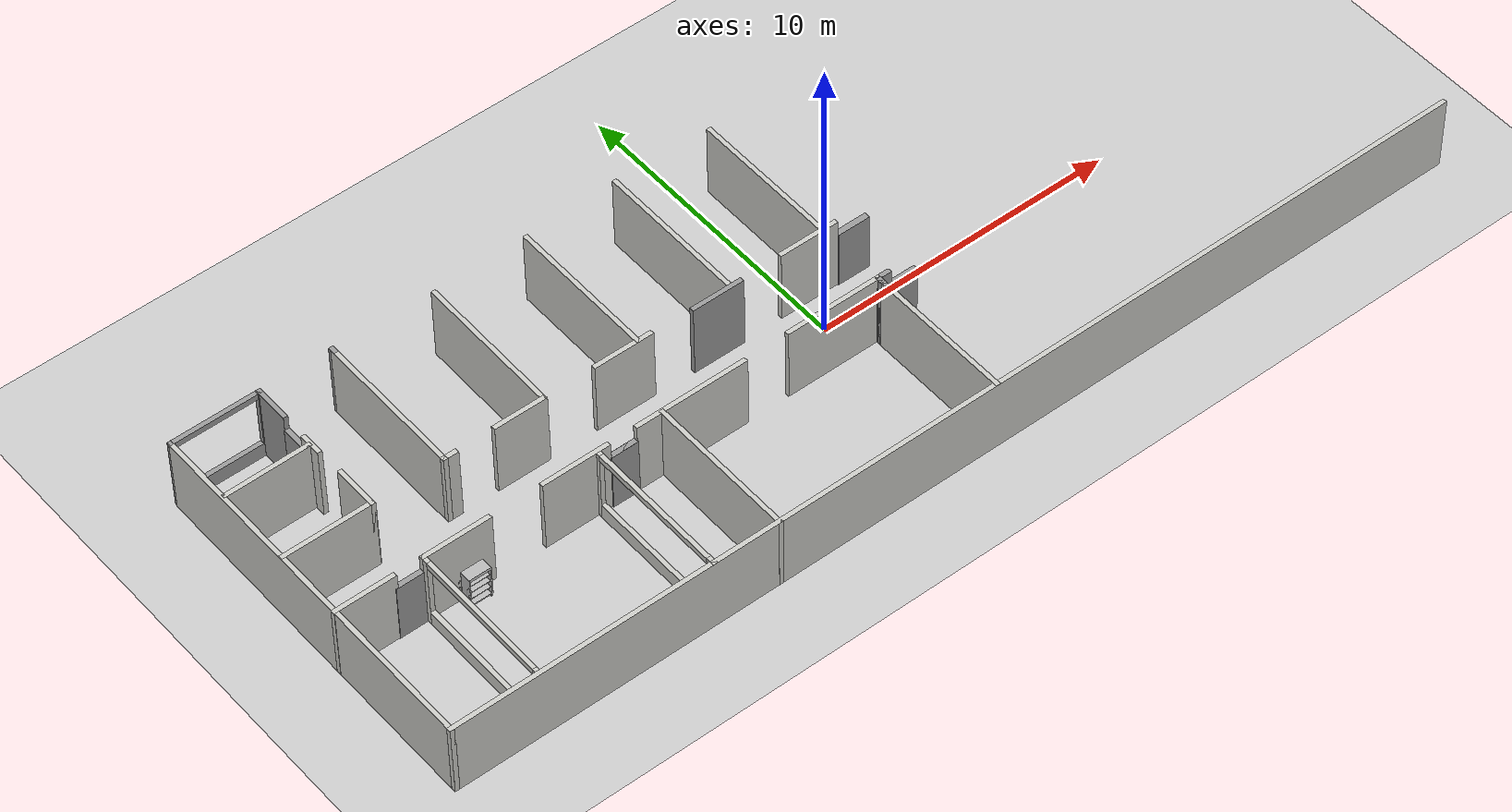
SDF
<sdf version="1.7">
 <world name="default">
  <model name="ground_plane">
   <static>1</static>
   <link name="link">
    <collision name="collision">
     <geometry><plane><normal>0 0 1</normal><size>100 100</size></plane></geometry>
     <surface>
      <contact><collide_bitmask>65535</collide_bitmask></contact>
      <friction><ode><mu>100</mu><mu2>50</mu2></ode></friction>
     </surface>
    </collision>
    <visual name="visual">
     <cast_shadows>0</cast_shadows>
     <geometry><plane><normal>0 0 1</normal><size>100 100</size></plane></geometry>
     <material>
      <script><uri>file://media/materials/scripts/gazebo.material</uri><name>Gazebo/Grey</name></script>
     </material>
    </visual>
   </link>
  </model>
  <model name="Loyola">
   <pose>0.01158 0.01152 0 0 -0 0</pose>
   <link name="Door_0">
    <collision name="Door_0_Collision">
     <geometry><box><size>0.9 0.17 2</size></box></geometry>
     <pose>0 0 1 0 -0 0</pose>
    </collision>
    <visual name="Door_0_Visual">
     <pose>0 0 1 0 -0 0</pose>
     <geometry><box><size>0.9 0.17 2</size></box></geometry>
     <material>
      <script><uri>file://media/materials/scripts/gazebo.material</uri><name>Gazebo/Grey</name></script>
     </material>
    </visual>
    <pose>-7.88567 -1.23425 0 0 -0 0</pose>
   </link>
   <link name="Door_11">
    <collision name="Door_11_Collision">
     <geometry><box><size>0.9 0.17 2</size></box></geometry>
     <pose>0 0 1 0 -0 0</pose>
    </collision>
    <visual name="Door_11_Visual">
     <pose>0 0 1 0 -0 0</pose>
     <geometry><box><size>0.9 0.17 2</size></box></geometry>
     <material>
      <script><uri>file://media/materials/scripts/gazebo.material</uri><name>Gazebo/Grey</name></script>
     </material>
    </visual>
    <pose>1.76233 -1.19882 0 0 -0 0</pose>
   </link>
   <link name="Door_14">
    <collision name="Door_14_Collision">
     <geometry><box><size>1.09762 0.2 2</size></box></geometry>
     <pose>0 0 1 0 -0 0</pose>
    </collision>
    <visual name="Door_14_Visual">
     <pose>0 0 1 0 -0 0</pose>
     <geometry><box><size>1.09762 0.2 2</size></box></geometry>
     <material>
      <script><uri>file://media/materials/scripts/gazebo.material</uri><name>Gazebo/Grey</name></script>
     </material>
    </visual>
    <pose>1.89125 1.11694 0 0 -0 0</pose>
   </link>
   <link name="Door_4">
    <collision name="Door_4_Collision">
     <geometry><box><size>0.9 0.17 2</size></box></geometry>
     <pose>0 0 1 0 -0 0</pose>
    </collision>
    <visual name="Door_4_Visual">
     <pose>0 0 1 0 -0 0</pose>
     <geometry><box><size>0.9 0.17 2</size></box></geometry>
     <material>
      <script><uri>file://media/materials/scripts/gazebo.material</uri><name>Gazebo/Grey</name></script>
     </material>
    </visual>
    <pose>-14.3181 4.49137 0 0 -0 1.56919</pose>
   </link>
   <link name="Door_7">
    <collision name="Door_7_Collision">
     <geometry><box><size>0.9 0.17 2</size></box></geometry>
     <pose>0 0 1 0 -0 0</pose>
    </collision>
    <visual name="Door_7_Visual">
     <pose>0 0 1 0 -0 0</pose>
     <geometry><box><size>0.9 0.17 2</size></box></geometry>
     <material>
      <script><uri>file://media/materials/scripts/gazebo.material</uri><name>Gazebo/Grey</name></script>
     </material>
    </visual>
    <pose>-14.895 -1.20399 0 0 -0 0</pose>
   </link>
   <link name="Door_8">
    <collision name="Door_8_Collision">
     <geometry><box><size>0.9 0.17 2</size></box></geometry>
     <pose>0 0 1 0 -0 0</pose>
    </collision>
    <visual name="Door_8_Visual">
     <pose>0 0 1 0 -0 0</pose>
     <geometry><box><size>0.9 0.17 2</size></box></geometry>
     <material>
      <script><uri>file://media/materials/scripts/gazebo.material</uri><name>Gazebo/Grey</name></script>
     </material>
    </visual>
    <pose>-7.88095 -1.22731 0 0 -0 0</pose>
   </link>
   <link name="Wall_101">
    <collision name="Wall_101_Collision">
     <geometry><box><size>0.5 0.15 2.5</size></box></geometry>
     <pose>0 0 1.25 0 -0 0</pose>
    </collision>
    <visual name="Wall_101_Visual">
     <pose>0 0 1.25 0 -0 0</pose>
     <geometry><box><size>0.5 0.15 2.5</size></box></geometry>
     <material>
      <script><uri>file://media/materials/scripts/gazebo.material</uri><name>Gazebo/CeilingTiled</name></script>
      <ambient>1 1 1 1</ambient>
     </material>
     <meta><layer>0</layer></meta>
    </visual>
    <pose>-11.7788 1.1323 0 0 -0 3.14159</pose>
   </link>
   <link name="Wall_104">
    <collision name="Wall_104_Collision">
     <geometry><box><size>5 0.15 2.5</size></box></geometry>
     <pose>0 0 1.25 0 -0 0</pose>
    </collision>
    <visual name="Wall_104_Visual">
     <pose>0 0 1.25 0 -0 0</pose>
     <geometry><box><size>5 0.15 2.5</size></box></geometry>
     <material>
      <script><uri>file://media/materials/scripts/gazebo.material</uri><name>Gazebo/CeilingTiled</name></script>
      <ambient>1 1 1 1</ambient>
     </material>
     <meta><layer>0</layer></meta>
    </visual>
    <pose>-11.9538 3.5573 0 0 -0 1.5708</pose>
   </link>
   <link name="Wall_105">
    <collision name="Wall_105_Collision">
     <geometry><box><size>0.25 0.15 2.5</size></box></geometry>
     <pose>0 0 1.25 0 -0 0</pose>
    </collision>
    <visual name="Wall_105_Visual">
     <pose>0 0 1.25 0 -0 0</pose>
     <geometry><box><size>0.25 0.15 2.5</size></box></geometry>
     <material>
      <script><uri>file://media/materials/scripts/gazebo.material</uri><name>Gazebo/Grey</name></script>
      <ambient>1 1 1 1</ambient>
     </material>
     <meta><layer>0</layer></meta>
    </visual>
    <pose>-11.9538 6.03231 0 0 -0 1.5708</pose>
   </link>
   <link name="Wall_110">
    <collision name="Wall_110_Collision">
     <geometry><box><size>0.15 0.15 2.5</size></box></geometry>
     <pose>0 0 1.25 0 -0 0</pose>
    </collision>
    <visual name="Wall_110_Visual">
     <pose>0 0 1.25 0 -0 0</pose>
     <geometry><box><size>0.15 0.15 2.5</size></box></geometry>
     <material>
      <script><uri>file://media/materials/scripts/gazebo.material</uri><name>Gazebo/Grey</name></script>
      <ambient>1 1 1 1</ambient>
     </material>
     <meta><layer>0</layer></meta>
    </visual>
    <pose>-14.4103 3.76218 0 0 -0 0</pose>
   </link>
   <link name="Wall_113">
    <collision name="Wall_113_Collision">
     <geometry><box><size>0.75 0.15 2.5</size></box></geometry>
     <pose>0 0 1.25 0 -0 0</pose>
    </collision>
    <visual name="Wall_113_Visual">
     <pose>0 0 1.25 0 -0 0</pose>
     <geometry><box><size>0.75 0.15 2.5</size></box></geometry>
     <material>
      <script><uri>file://media/materials/scripts/gazebo.material</uri><name>Gazebo/CeilingTiled</name></script>
      <ambient>1 1 1 1</ambient>
     </material>
     <meta><layer>0</layer></meta>
    </visual>
    <pose>-14.3366 3.74353 0 0 -0 -1.5708</pose>
   </link>
   <link name="Wall_115">
    <collision name="Wall_115_Collision">
     <geometry><box><size>2.85056 0.15 2.5</size></box></geometry>
     <pose>0 0 1.25 0 -0 0</pose>
    </collision>
    <visual name="Wall_115_Visual">
     <pose>0 0 1.25 0 -0 0</pose>
     <geometry><box><size>2.85056 0.15 2.5</size></box></geometry>
     <material>
      <script><uri>file://media/materials/scripts/gazebo.material</uri><name>Gazebo/CeilingTiled</name></script>
      <ambient>1 1 1 1</ambient>
     </material>
     <meta><layer>0</layer></meta>
    </visual>
    <pose>-15.7606 3.75157 0 0 -0 0.007857</pose>
   </link>
   <link name="Wall_118">
    <collision name="Wall_118_Collision">
     <geometry><box><size>12.25 0.15 2.5</size></box></geometry>
     <pose>0 0 1.25 0 -0 0</pose>
    </collision>
    <visual name="Wall_118_Visual">
     <pose>0 0 1.25 0 -0 0</pose>
     <geometry><box><size>12.25 0.15 2.5</size></box></geometry>
     <material>
      <script><uri>file://media/materials/scripts/gazebo.material</uri><name>Gazebo/CeilingTiled</name></script>
      <ambient>1 1 1 1</ambient>
     </material>
     <meta><layer>0</layer></meta>
    </visual>
    <pose>-17.1766 -0.048952 0 0 -0 1.5708</pose>
   </link>
   <link name="Wall_120">
    <collision name="Wall_120_Collision">
     <geometry><box><size>2 0.15 2.5</size></box></geometry>
     <pose>0 0 1.25 0 -0 0</pose>
    </collision>
    <visual name="Wall_120_Visual">
     <pose>0 0 1.25 0 -0 0</pose>
     <geometry><box><size>2 0.15 2.5</size></box></geometry>
     <material>
      <script><uri>file://media/materials/scripts/gazebo.material</uri><name>Gazebo/CeilingTiled</name></script>
      <ambient>1 1 1 1</ambient>
     </material>
     <meta><layer>0</layer></meta>
    </visual>
    <pose>-16.2614 -1.19554 0 0 -0 3.14159</pose>
   </link>
   <link name="Wall_124">
    <collision name="Wall_124_Collision">
     <geometry><box><size>0.5 0.15 2.5</size></box></geometry>
     <pose>0 0 1.25 0 -0 0</pose>
    </collision>
    <visual name="Wall_124_Visual">
     <pose>0 0 1.25 0 -0 0</pose>
     <geometry><box><size>0.5 0.15 2.5</size></box></geometry>
     <material>
      <script><uri>file://media/materials/scripts/gazebo.material</uri><name>Gazebo/Grey</name></script>
      <ambient>1 1 1 1</ambient>
     </material>
     <meta><layer>0</layer></meta>
    </visual>
    <pose>1.05325 -1.18357 0 0 -0 0</pose>
   </link>
   <link name="Wall_138">
    <pose>-14.3764 -3.61957 0 0 -0 -1.5708</pose>
    <visual name="Wall_138_Visual_0">
     <pose>-2.34104 0 1.25 0 -0 0</pose>
     <geometry><box><size>0.317931 0.15 2.5</size></box></geometry>
     <material>
      <script><uri>file://media/materials/scripts/gazebo.material</uri><name>Gazebo/CeilingTiled</name></script>
      <ambient>1 1 1 1</ambient>
     </material>
     <meta><layer>0</layer></meta>
    </visual>
    <collision name="Wall_138_Collision_0">
     <geometry><box><size>0.317931 0.15 2.5</size></box></geometry>
     <pose>-2.34104 0 1.25 0 -0 0</pose>
    </collision>
    <visual name="Wall_138_Visual_1">
     <pose>0.158965 0 0.25 0 -0 0</pose>
     <geometry><box><size>4.68207 0.15 0.5</size></box></geometry>
     <material>
      <script><uri>file://media/materials/scripts/gazebo.material</uri><name>Gazebo/CeilingTiled</name></script>
      <ambient>1 1 1 1</ambient>
     </material>
     <meta><layer>0</layer></meta>
    </visual>
    <collision name="Wall_138_Collision_1">
     <geometry><box><size>4.68207 0.15 0.5</size></box></geometry>
     <pose>0.158965 0 0.25 0 -0 0</pose>
    </collision>
    <visual name="Wall_138_Visual_2">
     <pose>2.39397 0 1.5 0 -0 0</pose>
     <geometry><box><size>0.212069 0.15 2</size></box></geometry>
     <material>
      <script><uri>file://media/materials/scripts/gazebo.material</uri><name>Gazebo/CeilingTiled</name></script>
      <ambient>1 1 1 1</ambient>
     </material>
     <meta><layer>0</layer></meta>
    </visual>
    <collision name="Wall_138_Collision_2">
     <geometry><box><size>0.212069 0.15 2</size></box></geometry>
     <pose>2.39397 0 1.5 0 -0 0</pose>
    </collision>
    <visual name="Wall_138_Visual_3">
     <pose>0.052931 0 2.4 0 -0 0</pose>
     <geometry><box><size>4.47 0.15 0.2</size></box></geometry>
     <material>
      <script><uri>file://media/materials/scripts/gazebo.material</uri><name>Gazebo/CeilingTiled</name></script>
      <ambient>1 1 1 1</ambient>
     </material>
     <meta><layer>0</layer></meta>
    </visual>
    <collision name="Wall_138_Collision_3">
     <geometry><box><size>4.47 0.15 0.2</size></box></geometry>
     <pose>0.052931 0 2.4 0 -0 0</pose>
    </collision>
   </link>
   <link name="Wall_25">
    <collision name="Wall_25_Collision">
     <geometry><box><size>1.75 0.15 2.5</size></box></geometry>
     <pose>0 0 1.25 0 -0 0</pose>
    </collision>
    <visual name="Wall_25_Visual">
     <pose>0 0 1.25 0 -0 0</pose>
     <geometry><box><size>1.75 0.15 2.5</size></box></geometry>
     <material>
      <script><uri>file://media/materials/scripts/gazebo.material</uri><name>Gazebo/CeilingTiled</name></script>
      <ambient>1 1 1 1</ambient>
     </material>
     <meta><layer>0</layer></meta>
    </visual>
    <pose>-9.47197 1.14108 0 0 -0 0</pose>
   </link>
   <link name="Wall_26">
    <collision name="Wall_26_Collision">
     <geometry><box><size>4.97433 0.15 2.5</size></box></geometry>
     <pose>0 0 1.25 0 -0 0</pose>
    </collision>
    <visual name="Wall_26_Visual">
     <pose>0 0 1.25 0 -0 0</pose>
     <geometry><box><size>4.97433 0.15 2.5</size></box></geometry>
     <material>
      <script><uri>file://media/materials/scripts/gazebo.material</uri><name>Gazebo/CeilingTiled</name></script>
      <ambient>1 1 1 1</ambient>
     </material>
     <meta><layer>0</layer></meta>
    </visual>
    <pose>-8.65478 3.55748 0 0 -0 1.56367</pose>
   </link>
   <link name="Wall_28">
    <collision name="Wall_28_Collision">
     <geometry><box><size>2 0.15 2.5</size></box></geometry>
     <pose>0 0 1.25 0 -0 0</pose>
    </collision>
    <visual name="Wall_28_Visual">
     <pose>0 0 1.25 0 -0 0</pose>
     <geometry><box><size>2 0.15 2.5</size></box></geometry>
     <material>
      <script><uri>file://media/materials/scripts/gazebo.material</uri><name>Gazebo/CeilingTiled</name></script>
      <ambient>1 1 1 1</ambient>
     </material>
     <meta><layer>0</layer></meta>
    </visual>
    <pose>-6.01416 1.14618 0 0 -0 0</pose>
   </link>
   <link name="Wall_3">
    <collision name="Wall_3_Collision">
     <geometry><box><size>34.513 0.15 2.5</size></box></geometry>
     <pose>0 0 1.25 0 -0 0</pose>
    </collision>
    <visual name="Wall_3_Visual">
     <pose>0 0 1.25 0 -0 0</pose>
     <geometry><box><size>34.513 0.15 2.5</size></box></geometry>
     <material>
      <script><uri>file://media/materials/scripts/gazebo.material</uri><name>Gazebo/CeilingTiled</name></script>
      <ambient>1 1 1 1</ambient>
     </material>
     <meta><layer>0</layer></meta>
    </visual>
    <pose>0.004874 -6.09895 0 0 -0 0</pose>
   </link>
   <link name="Wall_30">
    <collision name="Wall_30_Collision">
     <geometry><box><size>5 0.15 2.5</size></box></geometry>
     <pose>0 0 1.25 0 -0 0</pose>
    </collision>
    <visual name="Wall_30_Visual">
     <pose>0 0 1.25 0 -0 0</pose>
     <geometry><box><size>5 0.15 2.5</size></box></geometry>
     <material>
      <script><uri>file://media/materials/scripts/gazebo.material</uri><name>Gazebo/CeilingTiled</name></script>
      <ambient>1 1 1 1</ambient>
     </material>
     <meta><layer>0</layer></meta>
    </visual>
    <pose>-5.50275 3.57778 0 0 -0 1.5708</pose>
   </link>
   <link name="Wall_32">
    <collision name="Wall_32_Collision">
     <geometry><box><size>1.75 0.15 2.5</size></box></geometry>
     <pose>0 0 1.25 0 -0 0</pose>
    </collision>
    <visual name="Wall_32_Visual">
     <pose>0 0 1.25 0 -0 0</pose>
     <geometry><box><size>1.75 0.15 2.5</size></box></geometry>
     <material>
      <script><uri>file://media/materials/scripts/gazebo.material</uri><name>Gazebo/Grey</name></script>
      <ambient>1 1 1 1</ambient>
     </material>
     <meta><layer>0</layer></meta>
    </visual>
    <pose>-2.84073 1.09298 0 0 -0 0</pose>
   </link>
   <link name="Wall_34">
    <collision name="Wall_34_Collision">
     <geometry><box><size>5 0.15 2.5</size></box></geometry>
     <pose>0 0 1.25 0 -0 0</pose>
    </collision>
    <visual name="Wall_34_Visual">
     <pose>0 0 1.25 0 -0 0</pose>
     <geometry><box><size>5 0.15 2.5</size></box></geometry>
     <material>
      <script><uri>file://media/materials/scripts/gazebo.material</uri><name>Gazebo/CeilingTiled</name></script>
      <ambient>1 1 1 1</ambient>
     </material>
     <meta><layer>0</layer></meta>
    </visual>
    <pose>-2.36392 3.66882 0 0 -0 -1.5708</pose>
   </link>
   <link name="Wall_36">
    <collision name="Wall_36_Collision">
     <geometry><box><size>2 0.15 2.5</size></box></geometry>
     <pose>0 0 1.25 0 -0 0</pose>
    </collision>
    <visual name="Wall_36_Visual">
     <pose>0 0 1.25 0 -0 0</pose>
     <geometry><box><size>2 0.15 2.5</size></box></geometry>
     <material>
      <script><uri>file://media/materials/scripts/gazebo.material</uri><name>Gazebo/CeilingTiled</name></script>
      <ambient>1 1 1 1</ambient>
     </material>
     <meta><layer>0</layer></meta>
    </visual>
    <pose>0.353333 1.12811 0 0 -0 0</pose>
   </link>
   <link name="Wall_41">
    <collision name="Wall_41_Collision">
     <geometry><box><size>5 0.15 2.5</size></box></geometry>
     <pose>0 0 1.25 0 -0 0</pose>
    </collision>
    <visual name="Wall_41_Visual">
     <pose>0 0 1.25 0 -0 0</pose>
     <geometry><box><size>5 0.15 2.5</size></box></geometry>
     <material>
      <script><uri>file://media/materials/scripts/gazebo.material</uri><name>Gazebo/CeilingTiled</name></script>
      <ambient>1 1 1 1</ambient>
     </material>
     <meta><layer>0</layer></meta>
    </visual>
    <pose>0.85276 3.55891 0 0 -0 -1.5708</pose>
   </link>
   <link name="Wall_63">
    <collision name="Wall_63_Collision">
     <geometry><box><size>0.15 0.15 2.5</size></box></geometry>
     <pose>0 0 1.25 0 -0 0</pose>
    </collision>
    <visual name="Wall_63_Visual">
     <pose>0 0 1.25 0 -0 0</pose>
     <geometry><box><size>0.15 0.15 2.5</size></box></geometry>
     <material>
      <script><uri>file://media/materials/scripts/gazebo.material</uri><name>Gazebo/Grey</name></script>
      <ambient>1 1 1 1</ambient>
     </material>
     <meta><layer>0</layer></meta>
    </visual>
    <pose>0.882501 -1.4746 0 0 -0 0</pose>
   </link>
   <link name="Wall_66">
    <collision name="Wall_66_Collision">
     <geometry><box><size>4.75 0.15 2.5</size></box></geometry>
     <pose>0 0 1.25 0 -0 0</pose>
    </collision>
    <visual name="Wall_66_Visual">
     <pose>0 0 1.25 0 -0 0</pose>
     <geometry><box><size>4.75 0.15 2.5</size></box></geometry>
     <material>
      <script><uri>file://media/materials/scripts/gazebo.material</uri><name>Gazebo/CeilingTiled</name></script>
      <ambient>1 1 1 1</ambient>
     </material>
     <meta><layer>0</layer></meta>
    </visual>
    <pose>0.882501 -3.78782 0 0 -0 1.5708</pose>
   </link>
   <link name="Wall_67">
    <collision name="Wall_67_Collision">
     <geometry><box><size>0.25 0.15 2.5</size></box></geometry>
     <pose>0 0 1.25 0 -0 0</pose>
    </collision>
    <visual name="Wall_67_Visual">
     <pose>0 0 1.25 0 -0 0</pose>
     <geometry><box><size>0.25 0.15 2.5</size></box></geometry>
     <material>
      <script><uri>file://media/materials/scripts/gazebo.material</uri><name>Gazebo/Grey</name></script>
      <ambient>1 1 1 1</ambient>
     </material>
     <meta><layer>0</layer></meta>
    </visual>
    <pose>0.882501 -1.43782 0 0 -0 1.5708</pose>
   </link>
   <link name="Wall_68">
    <collision name="Wall_68_Collision">
     <geometry><box><size>0.25 0.15 2.5</size></box></geometry>
     <pose>0 0 1.25 0 -0 0</pose>
    </collision>
    <visual name="Wall_68_Visual">
     <pose>0 0 1.25 0 -0 0</pose>
     <geometry><box><size>0.25 0.15 2.5</size></box></geometry>
     <material>
      <script><uri>file://media/materials/scripts/gazebo.material</uri><name>Gazebo/Grey</name></script>
      <ambient>1 1 1 1</ambient>
     </material>
     <meta><layer>0</layer></meta>
    </visual>
    <pose>0.882501 -1.33782 0 0 -0 1.5708</pose>
   </link>
   <link name="Wall_69">
    <collision name="Wall_69_Collision">
     <geometry><box><size>0.25009 0.15 2.5</size></box></geometry>
     <pose>0 0 1.25 0 -0 0</pose>
    </collision>
    <visual name="Wall_69_Visual">
     <pose>0 0 1.25 0 -0 0</pose>
     <geometry><box><size>0.25009 0.15 2.5</size></box></geometry>
     <material>
      <script><uri>file://media/materials/scripts/gazebo.material</uri><name>Gazebo/Grey</name></script>
      <ambient>1 1 1 1</ambient>
     </material>
     <meta><layer>0</layer></meta>
    </visual>
    <pose>0.880376 -1.23782 0 0 -0 1.61327</pose>
   </link>
   <link name="Wall_70">
    <collision name="Wall_70_Collision">
     <geometry><box><size>3.23725 0.15 2.5</size></box></geometry>
     <pose>0 0 1.25 0 -0 0</pose>
    </collision>
    <visual name="Wall_70_Visual">
     <pose>0 0 1.25 0 -0 0</pose>
     <geometry><box><size>3.23725 0.15 2.5</size></box></geometry>
     <material>
      <script><uri>file://media/materials/scripts/gazebo.material</uri><name>Gazebo/CeilingTiled</name></script>
      <ambient>1 1 1 1</ambient>
     </material>
     <meta><layer>0</layer></meta>
    </visual>
    <pose>-0.665374 -1.18357 0 0 -0 3.14159</pose>
   </link>
   <link name="Wall_72">
    <collision name="Wall_72_Collision">
     <geometry><box><size>3.75 0.15 2.5</size></box></geometry>
     <pose>0 0 1.25 0 -0 0</pose>
    </collision>
    <visual name="Wall_72_Visual">
     <pose>0 0 1.25 0 -0 0</pose>
     <geometry><box><size>3.75 0.15 2.5</size></box></geometry>
     <material>
      <script><uri>file://media/materials/scripts/gazebo.material</uri><name>Gazebo/CeilingTiled</name></script>
      <ambient>1 1 1 1</ambient>
     </material>
     <meta><layer>0</layer></meta>
    </visual>
    <pose>-5.5727 -1.2078 0 0 -0 3.14159</pose>
   </link>
   <link name="Wall_78">
    <collision name="Wall_78_Collision">
     <geometry><box><size>5 0.15 2.5</size></box></geometry>
     <pose>0 0 1.25 0 -0 0</pose>
    </collision>
    <visual name="Wall_78_Visual">
     <pose>0 0 1.25 0 -0 0</pose>
     <geometry><box><size>5 0.15 2.5</size></box></geometry>
     <material>
      <script><uri>file://media/materials/scripts/gazebo.material</uri><name>Gazebo/CeilingTiled</name></script>
      <ambient>1 1 1 1</ambient>
     </material>
     <meta><layer>0</layer></meta>
    </visual>
    <pose>-6.54995 -3.67605 0 0 -0 1.5708</pose>
   </link>
   <link name="Wall_82">
    <pose>-8.71885 -3.66615 0 0 -0 -1.5708</pose>
    <visual name="Wall_82_Visual_0">
     <pose>-2.38462 0 1.25 0 -0 0</pose>
     <geometry><box><size>0.230757 0.15 2.5</size></box></geometry>
     <material>
      <script><uri>file://media/materials/scripts/gazebo.material</uri><name>Gazebo/CeilingTiled</name></script>
      <ambient>1 1 1 1</ambient>
     </material>
     <meta><layer>0</layer></meta>
    </visual>
    <collision name="Wall_82_Collision_0">
     <geometry><box><size>0.230757 0.15 2.5</size></box></geometry>
     <pose>-2.38462 0 1.25 0 -0 0</pose>
    </collision>
    <visual name="Wall_82_Visual_1">
     <pose>0.115379 0 0.25 0 -0 0</pose>
     <geometry><box><size>4.76924 0.15 0.5</size></box></geometry>
     <material>
      <script><uri>file://media/materials/scripts/gazebo.material</uri><name>Gazebo/CeilingTiled</name></script>
      <ambient>1 1 1 1</ambient>
     </material>
     <meta><layer>0</layer></meta>
    </visual>
    <collision name="Wall_82_Collision_1">
     <geometry><box><size>4.76924 0.15 0.5</size></box></geometry>
     <pose>0.115379 0 0.25 0 -0 0</pose>
    </collision>
    <visual name="Wall_82_Visual_2">
     <pose>2.35788 0 1.5 0 -0 0</pose>
     <geometry><box><size>0.284243 0.15 2</size></box></geometry>
     <material>
      <script><uri>file://media/materials/scripts/gazebo.material</uri><name>Gazebo/CeilingTiled</name></script>
      <ambient>1 1 1 1</ambient>
     </material>
     <meta><layer>0</layer></meta>
    </visual>
    <collision name="Wall_82_Collision_2">
     <geometry><box><size>0.284243 0.15 2</size></box></geometry>
     <pose>2.35788 0 1.5 0 -0 0</pose>
    </collision>
    <visual name="Wall_82_Visual_3">
     <pose>-0.026743 0 2.4 0 -0 0</pose>
     <geometry><box><size>4.485 0.15 0.2</size></box></geometry>
     <material>
      <script><uri>file://media/materials/scripts/gazebo.material</uri><name>Gazebo/CeilingTiled</name></script>
      <ambient>1 1 1 1</ambient>
     </material>
     <meta><layer>0</layer></meta>
    </visual>
    <collision name="Wall_82_Collision_3">
     <geometry><box><size>4.485 0.15 0.2</size></box></geometry>
     <pose>-0.026743 0 2.4 0 -0 0</pose>
    </collision>
   </link>
   <link name="Wall_84">
    <collision name="Wall_84_Collision">
     <geometry><box><size>2.25 0.15 2.5</size></box></geometry>
     <pose>0 0 1.25 0 -0 0</pose>
    </collision>
    <visual name="Wall_84_Visual">
     <pose>0 0 1.25 0 -0 0</pose>
     <geometry><box><size>2.25 0.15 2.5</size></box></geometry>
     <material>
      <script><uri>file://media/materials/scripts/gazebo.material</uri><name>Gazebo/CeilingTiled</name></script>
      <ambient>1 1 1 1</ambient>
     </material>
     <meta><layer>0</layer></meta>
    </visual>
    <pose>-9.43822 -1.2078 0 0 -0 3.14159</pose>
   </link>
   <link name="Wall_86">
    <collision name="Wall_86_Collision">
     <geometry><box><size>2.25 0.15 2.5</size></box></geometry>
     <pose>0 0 1.25 0 -0 0</pose>
    </collision>
    <visual name="Wall_86_Visual">
     <pose>0 0 1.25 0 -0 0</pose>
     <geometry><box><size>2.25 0.15 2.5</size></box></geometry>
     <material>
      <script><uri>file://media/materials/scripts/gazebo.material</uri><name>Gazebo/CeilingTiled</name></script>
      <ambient>1 1 1 1</ambient>
     </material>
     <meta><layer>0</layer></meta>
    </visual>
    <pose>-13.3264 -1.19457 0 0 -0 3.14159</pose>
   </link>
   <link name="Wall_89">
    <pose>-15.7386 6.10105 0 0 -0 0</pose>
    <visual name="Wall_89_Visual_0">
     <pose>-1.43978 0 1.25 0 -0 0</pose>
     <geometry><box><size>0.120447 0.15 2.5</size></box></geometry>
     <material>
      <script><uri>file://media/materials/scripts/gazebo.material</uri><name>Gazebo/Grey</name></script>
      <ambient>1 1 1 1</ambient>
     </material>
     <meta><layer>0</layer></meta>
    </visual>
    <collision name="Wall_89_Collision_0">
     <geometry><box><size>0.120447 0.15 2.5</size></box></geometry>
     <pose>-1.43978 0 1.25 0 -0 0</pose>
    </collision>
    <visual name="Wall_89_Visual_1">
     <pose>0.060223 0 0.25 0 -0 0</pose>
     <geometry><box><size>2.87955 0.15 0.5</size></box></geometry>
     <material>
      <script><uri>file://media/materials/scripts/gazebo.material</uri><name>Gazebo/Grey</name></script>
      <ambient>1 1 1 1</ambient>
     </material>
     <meta><layer>0</layer></meta>
    </visual>
    <collision name="Wall_89_Collision_1">
     <geometry><box><size>2.87955 0.15 0.5</size></box></geometry>
     <pose>0.060223 0 0.25 0 -0 0</pose>
    </collision>
    <visual name="Wall_89_Visual_2">
     <pose>1.41022 0 1.5 0 -0 0</pose>
     <geometry><box><size>0.179553 0.15 2</size></box></geometry>
     <material>
      <script><uri>file://media/materials/scripts/gazebo.material</uri><name>Gazebo/Grey</name></script>
      <ambient>1 1 1 1</ambient>
     </material>
     <meta><layer>0</layer></meta>
    </visual>
    <collision name="Wall_89_Collision_2">
     <geometry><box><size>0.179553 0.15 2</size></box></geometry>
     <pose>1.41022 0 1.5 0 -0 0</pose>
    </collision>
    <visual name="Wall_89_Visual_3">
     <pose>-0.029553 0 2.4 0 -0 0</pose>
     <geometry><box><size>2.7 0.15 0.2</size></box></geometry>
     <material>
      <script><uri>file://media/materials/scripts/gazebo.material</uri><name>Gazebo/Grey</name></script>
      <ambient>1 1 1 1</ambient>
     </material>
     <meta><layer>0</layer></meta>
    </visual>
    <collision name="Wall_89_Collision_3">
     <geometry><box><size>2.7 0.15 0.2</size></box></geometry>
     <pose>-0.029553 0 2.4 0 -0 0</pose>
    </collision>
   </link>
   <link name="Wall_90">
    <collision name="Wall_90_Collision">
     <geometry><box><size>1.25 0.15 2.5</size></box></geometry>
     <pose>0 0 1.25 0 -0 0</pose>
    </collision>
    <visual name="Wall_90_Visual">
     <pose>0 0 1.25 0 -0 0</pose>
     <geometry><box><size>1.25 0.15 2.5</size></box></geometry>
     <material>
      <script><uri>file://media/materials/scripts/gazebo.material</uri><name>Gazebo/Grey</name></script>
      <ambient>1 1 1 1</ambient>
     </material>
     <meta><layer>0</layer></meta>
    </visual>
    <pose>-14.3136 5.55105 0 0 -0 -1.5708</pose>
   </link>
   <link name="Wall_97">
    <collision name="Wall_97_Collision">
     <geometry><box><size>3 0.15 2.5</size></box></geometry>
     <pose>0 0 1.25 0 -0 0</pose>
    </collision>
    <visual name="Wall_97_Visual">
     <pose>0 0 1.25 0 -0 0</pose>
     <geometry><box><size>3 0.15 2.5</size></box></geometry>
     <material>
      <script><uri>file://media/materials/scripts/gazebo.material</uri><name>Gazebo/CeilingTiled</name></script>
      <ambient>1 1 1 1</ambient>
     </material>
     <meta><layer>0</layer></meta>
    </visual>
    <pose>-15.7288 1.11943 0 0 -0 0</pose>
   </link>
   <link name="Wall_98">
    <collision name="Wall_98_Collision">
     <geometry><box><size>1.5 0.15 2.5</size></box></geometry>
     <pose>0 0 1.25 0 -0 0</pose>
    </collision>
    <visual name="Wall_98_Visual">
     <pose>0 0 1.25 0 -0 0</pose>
     <geometry><box><size>1.5 0.15 2.5</size></box></geometry>
     <material>
      <script><uri>file://media/materials/scripts/gazebo.material</uri><name>Gazebo/CeilingTiled</name></script>
      <ambient>1 1 1 1</ambient>
     </material>
     <meta><layer>0</layer></meta>
    </visual>
    <pose>-14.3038 1.79443 0 0 -0 1.5708</pose>
   </link>
   <static>1</static>
  </model>
  <model name="ScrubsTrolley">
   <static>1</static>
   <link name="body">
    <visual name="visual">
     <geometry>
      <mesh>
       <uri>https://fuel.gazebosim.org/1.0/openrobotics/models/scrubstrolley/3/files/meshes/ScrubsTrolley.obj</uri>
      </mesh>
     </geometry>
    </visual>
    <collision name="collision">
     <geometry>
      <mesh>
       <uri>https://fuel.gazebosim.org/1.0/openrobotics/models/scrubstrolley/3/files/meshes/ScrubsTrolley_Col.obj</uri>
      </mesh>
     </geometry>
    </collision>
   </link>
   <pose>-12.997 -1.5227 0 0 -0 0</pose>
  </model>
 </world>
</sdf>
